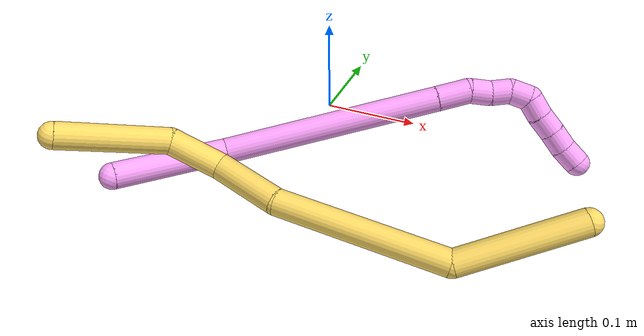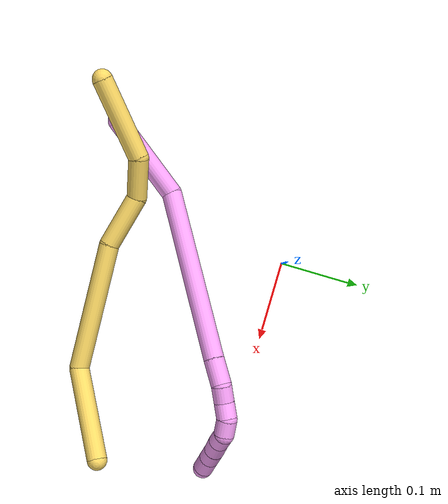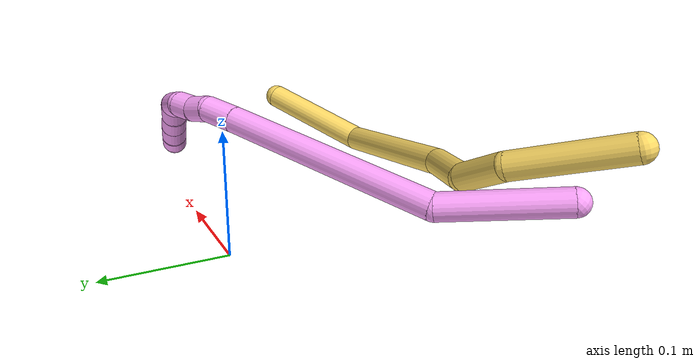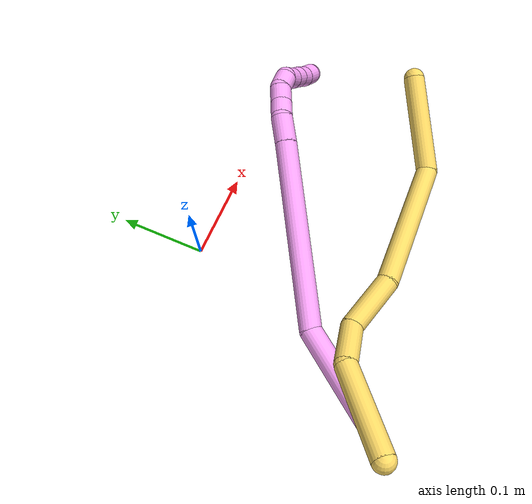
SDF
<sdf version="1.7">
 <world name="default">
  <model name="photoneo_s_sensor">
   <static>1</static>
   <pose>0 0 2 1.57079 1.57079 3.14159</pose>
   <link name="link">
    <inertial><mass>0.1</mass></inertial>
    <sensor name="sensor" type="depth">
     <update_rate>30</update_rate>
     <camera>
      <horizontal_fov>1.22</horizontal_fov>
      <image><width>1920</width><height>1200</height><format>B8G8R8</format></image>
      <clip><near>0.1</near><far>4</far></clip>
      <depth_camera><output>points</output></depth_camera>
     </camera>
     <plugin name="camera_plugin" filename="libgazebo_ros_depth_camera.so">
      <baseline>0.2</baseline>
      <alwaysOn>1</alwaysOn>
      <updateRate>0.0</updateRate>
      <cameraName>camera_ir</cameraName>
      <imageTopicName>/camera/color/image_raw</imageTopicName>
      <cameraInfoTopicName>/camera/color/camera_info</cameraInfoTopicName>
      <depthImageTopicName>/camera/depth/image_raw</depthImageTopicName>
      <depthImageCameraInfoTopicName>/camera/depth/camera_info</depthImageCameraInfoTopicName>
      <pointCloudTopicName>/camera/depth/points</pointCloudTopicName>
      <frameName>fr_optical</frameName>
      <pointCloudCutoff>0.1</pointCloudCutoff>
      <pointCloudCutoffMax>2.0</pointCloudCutoffMax>
      <distortionK1>0</distortionK1>
      <distortionK2>0</distortionK2>
      <distortionK3>0</distortionK3>
      <distortionT1>0</distortionT1>
      <distortionT2>0</distortionT2>
      <CxPrime>0</CxPrime>
      <Cx>0</Cx>
      <Cy>0</Cy>
      <focalLength>0</focalLength>
      <hackBaseline>0</hackBaseline>
     </plugin>
    </sensor>
   </link>
  </model>
  <model name="bin">
   <static>1</static>
   <link name="bottom">
    <collision name="collision-bottom">
     <pose>0 0 -0.01 0 -0 0</pose>
     <geometry><box><size>0.8 0.6 0.02</size></box></geometry>
     <surface>
      <friction><ode><mu>100</mu><mu2>100</mu2></ode></friction>
      <contact><collide_bitmask>65535</collide_bitmask></contact>
     </surface>
    </collision>
   </link>
   <link name="west_wall">
    <collision name="collision-west_wall">
     <pose>-0.41 0 0.1 0 -0 0</pose>
     <geometry><box><size>0.02 0.6 0.2</size></box></geometry>
     <surface>
      <friction><ode><mu>100</mu><mu2>100</mu2></ode></friction>
      <contact><collide_bitmask>65535</collide_bitmask></contact>
     </surface>
    </collision>
   </link>
   <link name="east_wall">
    <collision name="collision-east_wall">
     <pose>0.41 0 0.1 0 -0 0</pose>
     <geometry><box><size>0.02 0.6 0.2</size></box></geometry>
     <surface>
      <friction><ode><mu>100</mu><mu2>100</mu2></ode></friction>
      <contact><collide_bitmask>65535</collide_bitmask></contact>
     </surface>
    </collision>
   </link>
   <link name="south_wall">
    <collision name="collision-south_wall">
     <pose>0 -0.31 0.1 0 -0 0</pose>
     <geometry><box><size>0.8 0.02 0.2</size></box></geometry>
     <surface>
      <friction><ode><mu>100</mu><mu2>100</mu2></ode></friction>
      <contact><collide_bitmask>65535</collide_bitmask></contact>
     </surface>
    </collision>
   </link>
   <link name="north_wall">
    <collision name="collision-north_wall">
     <pose>0 0.31 0.1 0 -0 0</pose>
     <geometry><box><size>0.8 0.02 0.2</size></box></geometry>
     <surface>
      <friction><ode><mu>100</mu><mu2>100</mu2></ode></friction>
      <contact><collide_bitmask>65535</collide_bitmask></contact>
     </surface>
    </collision>
   </link>
  </model>
  <model name="4">
   <static>0</static>
   <link name="4">
    <collision name="collision-cylinder-e_1_1_4">
     <pose>0.04298 -0.017385 -0.030442 2.6227 0.886597 2.12212</pose>
     <geometry><cylinder><radius>0.0125</radius><length>0.110928</length></cylinder></geometry>
     <surface>
      <friction><ode><mu>1.16</mu><mu2>1.16</mu2><slip1>0</slip1><slip2>0</slip2></ode></friction>
      <contact><ode><kp>1e+06</kp><kd>1</kd><max_vel>0</max_vel><min_depth>0.001</min_depth></ode></contact>
     </surface>
    </collision>
    <visual name="visual-cylinder-e_1_1_4">
     <pose>0.04298 -0.017385 -0.030442 2.6227 0.886597 2.12212</pose>
     <geometry><cylinder><radius>0.0125</radius><length>0.110928</length></cylinder></geometry>
     <material><ambient>1 0.65098 0.996078 1</ambient></material>
    </visual>
    <collision name="collision-cylinder-e_2_4_5">
     <pose>0.169246 -0.016445 -0.125257 -2.86427 0.893845 -2.57488</pose>
     <geometry><cylinder><radius>0.0125</radius><length>0.213694</length></cylinder></geometry>
     <surface>
      <friction><ode><mu>1.16</mu><mu2>1.16</mu2><slip1>0</slip1><slip2>0</slip2></ode></friction>
      <contact><ode><kp>1e+06</kp><kd>1</kd><max_vel>0</max_vel><min_depth>0.001</min_depth></ode></contact>
     </surface>
    </collision>
    <visual name="visual-cylinder-e_2_4_5">
     <pose>0.169246 -0.016445 -0.125257 -2.86427 0.893845 -2.57488</pose>
     <geometry><cylinder><radius>0.0125</radius><length>0.213694</length></cylinder></geometry>
     <material><ambient>1 0.65098 0.996078 1</ambient></material>
    </visual>
    <collision name="collision-cylinder-e_3_5_6">
     <pose>0.265209 0.004219 -0.19956 -2.91027 0.893179 -2.66554</pose>
     <geometry><cylinder><radius>0.0125</radius><length>0.032544</length></cylinder></geometry>
     <surface>
      <friction><ode><mu>1.16</mu><mu2>1.16</mu2><slip1>0</slip1><slip2>0</slip2></ode></friction>
      <contact><ode><kp>1e+06</kp><kd>1</kd><max_vel>0</max_vel><min_depth>0.001</min_depth></ode></contact>
     </surface>
    </collision>
    <visual name="visual-cylinder-e_3_5_6">
     <pose>0.265209 0.004219 -0.19956 -2.91027 0.893179 -2.66554</pose>
     <geometry><cylinder><radius>0.0125</radius><length>0.032544</length></cylinder></geometry>
     <material><ambient>1 0.65098 0.996078 1</ambient></material>
    </visual>
    <collision name="collision-cylinder-e_4_6_7">
     <pose>0.28812 0.007092 -0.212701 -2.97661 1.26289 -2.91645</pose>
     <geometry><cylinder><radius>0.0125</radius><length>0.021479</length></cylinder></geometry>
     <surface>
      <friction><ode><mu>1.16</mu><mu2>1.16</mu2><slip1>0</slip1><slip2>0</slip2></ode></friction>
      <contact><ode><kp>1e+06</kp><kd>1</kd><max_vel>0</max_vel><min_depth>0.001</min_depth></ode></contact>
     </surface>
    </collision>
    <visual name="visual-cylinder-e_4_6_7">
     <pose>0.28812 0.007092 -0.212701 -2.97661 1.26289 -2.91645</pose>
     <geometry><cylinder><radius>0.0125</radius><length>0.021479</length></cylinder></geometry>
     <material><ambient>1 0.65098 0.996078 1</ambient></material>
    </visual>
    <collision name="collision-cylinder-e_5_7_8">
     <pose>0.307064 0.009452 -0.220852 -2.78767 1.02686 -2.52735</pose>
     <geometry><cylinder><radius>0.0125</radius><length>0.020356</length></cylinder></geometry>
     <surface>
      <friction><ode><mu>1.16</mu><mu2>1.16</mu2><slip1>0</slip1><slip2>0</slip2></ode></friction>
      <contact><ode><kp>1e+06</kp><kd>1</kd><max_vel>0</max_vel><min_depth>0.001</min_depth></ode></contact>
     </surface>
    </collision>
    <visual name="visual-cylinder-e_5_7_8">
     <pose>0.307064 0.009452 -0.220852 -2.78767 1.02686 -2.52735</pose>
     <geometry><cylinder><radius>0.0125</radius><length>0.020356</length></cylinder></geometry>
     <material><ambient>1 0.65098 0.996078 1</ambient></material>
    </visual>
    <collision name="collision-cylinder-e_6_8_9">
     <pose>0.325476 0.01398 -0.226113 -1.68877 1.29734 -1.41277</pose>
     <geometry><cylinder><radius>0.0125</radius><length>0.020154</length></cylinder></geometry>
     <surface>
      <friction><ode><mu>1.16</mu><mu2>1.16</mu2><slip1>0</slip1><slip2>0</slip2></ode></friction>
      <contact><ode><kp>1e+06</kp><kd>1</kd><max_vel>0</max_vel><min_depth>0.001</min_depth></ode></contact>
     </surface>
    </collision>
    <visual name="visual-cylinder-e_6_8_9">
     <pose>0.325476 0.01398 -0.226113 -1.68877 1.29734 -1.41277</pose>
     <geometry><cylinder><radius>0.0125</radius><length>0.020154</length></cylinder></geometry>
     <material><ambient>1 0.65098 0.996078 1</ambient></material>
    </visual>
    <collision name="collision-cylinder-e_7_9_10">
     <pose>0.343579 0.016339 -0.220874 0.061769 0.985362 0.033167</pose>
     <geometry><cylinder><radius>0.0125</radius><length>0.020159</length></cylinder></geometry>
     <surface>
      <friction><ode><mu>1.16</mu><mu2>1.16</mu2><slip1>0</slip1><slip2>0</slip2></ode></friction>
      <contact><ode><kp>1e+06</kp><kd>1</kd><max_vel>0</max_vel><min_depth>0.001</min_depth></ode></contact>
     </surface>
    </collision>
    <visual name="visual-cylinder-e_7_9_10">
     <pose>0.343579 0.016339 -0.220874 0.061769 0.985362 0.033167</pose>
     <geometry><cylinder><radius>0.0125</radius><length>0.020159</length></cylinder></geometry>
     <material><ambient>1 0.65098 0.996078 1</ambient></material>
    </visual>
    <collision name="collision-cylinder-e_8_10_11">
     <pose>0.361032 0.016106 -0.210633 -0.023719 1.09325 -0.014433</pose>
     <geometry><cylinder><radius>0.0125</radius><length>0.020384</length></cylinder></geometry>
     <surface>
      <friction><ode><mu>1.16</mu><mu2>1.16</mu2><slip1>0</slip1><slip2>0</slip2></ode></friction>
      <contact><ode><kp>1e+06</kp><kd>1</kd><max_vel>0</max_vel><min_depth>0.001</min_depth></ode></contact>
     </surface>
    </collision>
    <visual name="visual-cylinder-e_8_10_11">
     <pose>0.361032 0.016106 -0.210633 -0.023719 1.09325 -0.014433</pose>
     <geometry><cylinder><radius>0.0125</radius><length>0.020384</length></cylinder></geometry>
     <material><ambient>1 0.65098 0.996078 1</ambient></material>
    </visual>
    <collision name="collision-cylinder-e_9_11_12">
     <pose>0.378777 0.016424 -0.200851 -0.040469 1.04001 -0.023174</pose>
     <geometry><cylinder><radius>0.0125</radius><length>0.020159</length></cylinder></geometry>
     <surface>
      <friction><ode><mu>1.16</mu><mu2>1.16</mu2><slip1>0</slip1><slip2>0</slip2></ode></friction>
      <contact><ode><kp>1e+06</kp><kd>1</kd><max_vel>0</max_vel><min_depth>0.001</min_depth></ode></contact>
     </surface>
    </collision>
    <visual name="visual-cylinder-e_9_11_12">
     <pose>0.378777 0.016424 -0.200851 -0.040469 1.04001 -0.023174</pose>
     <geometry><cylinder><radius>0.0125</radius><length>0.020159</length></cylinder></geometry>
     <material><ambient>1 0.65098 0.996078 1</ambient></material>
    </visual>
    <collision name="collision-cylinder-e_10_12_2">
     <pose>0.396436 0.018304 -0.191483 -0.373588 1.09795 -0.230197</pose>
     <geometry><cylinder><radius>0.0125</radius><length>0.020143</length></cylinder></geometry>
     <surface>
      <friction><ode><mu>1.16</mu><mu2>1.16</mu2><slip1>0</slip1><slip2>0</slip2></ode></friction>
      <contact><ode><kp>1e+06</kp><kd>1</kd><max_vel>0</max_vel><min_depth>0.001</min_depth></ode></contact>
     </surface>
    </collision>
    <visual name="visual-cylinder-e_10_12_2">
     <pose>0.396436 0.018304 -0.191483 -0.373588 1.09795 -0.230197</pose>
     <geometry><cylinder><radius>0.0125</radius><length>0.020143</length></cylinder></geometry>
     <material><ambient>1 0.65098 0.996078 1</ambient></material>
    </visual>
    <collision name="collision-sphere-2">
     <pose>0.405402 0.019978 -0.187212 0 -0 0</pose>
     <geometry><sphere><radius>0.0125</radius></sphere></geometry>
     <surface>
      <friction><ode><mu>1.16</mu><mu2>1.16</mu2><slip1>0</slip1><slip2>0</slip2></ode></friction>
      <contact><ode><kp>1e+06</kp><kd>1</kd><max_vel>0</max_vel><min_depth>0.001</min_depth></ode></contact>
     </surface>
    </collision>
    <visual name="visual-sphere-2">
     <pose>0.405402 0.019978 -0.187212 0 -0 0</pose>
     <geometry><sphere><radius>0.0125</radius></sphere></geometry>
     <material><ambient>1 0.65098 0.996078 1</ambient></material>
    </visual>
    <collision name="collision-sphere-12">
     <pose>0.38747 0.01663 -0.195753 0 -0 0</pose>
     <geometry><sphere><radius>0.0125</radius></sphere></geometry>
     <surface>
      <friction><ode><mu>1.16</mu><mu2>1.16</mu2><slip1>0</slip1><slip2>0</slip2></ode></friction>
      <contact><ode><kp>1e+06</kp><kd>1</kd><max_vel>0</max_vel><min_depth>0.001</min_depth></ode></contact>
     </surface>
    </collision>
    <visual name="visual-sphere-12">
     <pose>0.38747 0.01663 -0.195753 0 -0 0</pose>
     <geometry><sphere><radius>0.0125</radius></sphere></geometry>
     <material><ambient>1 0.65098 0.996078 1</ambient></material>
    </visual>
    <collision name="collision-sphere-11">
     <pose>0.370084 0.016217 -0.205949 0 -0 0</pose>
     <geometry><sphere><radius>0.0125</radius></sphere></geometry>
     <surface>
      <friction><ode><mu>1.16</mu><mu2>1.16</mu2><slip1>0</slip1><slip2>0</slip2></ode></friction>
      <contact><ode><kp>1e+06</kp><kd>1</kd><max_vel>0</max_vel><min_depth>0.001</min_depth></ode></contact>
     </surface>
    </collision>
    <visual name="visual-sphere-11">
     <pose>0.370084 0.016217 -0.205949 0 -0 0</pose>
     <geometry><sphere><radius>0.0125</radius></sphere></geometry>
     <material><ambient>1 0.65098 0.996078 1</ambient></material>
    </visual>
    <collision name="collision-sphere-10">
     <pose>0.35198 0.015995 -0.215316 0 -0 0</pose>
     <geometry><sphere><radius>0.0125</radius></sphere></geometry>
     <surface>
      <friction><ode><mu>1.16</mu><mu2>1.16</mu2><slip1>0</slip1><slip2>0</slip2></ode></friction>
      <contact><ode><kp>1e+06</kp><kd>1</kd><max_vel>0</max_vel><min_depth>0.001</min_depth></ode></contact>
     </surface>
    </collision>
    <visual name="visual-sphere-10">
     <pose>0.35198 0.015995 -0.215316 0 -0 0</pose>
     <geometry><sphere><radius>0.0125</radius></sphere></geometry>
     <material><ambient>1 0.65098 0.996078 1</ambient></material>
    </visual>
    <collision name="collision-sphere-9">
     <pose>0.335178 0.016683 -0.226433 0 -0 0</pose>
     <geometry><sphere><radius>0.0125</radius></sphere></geometry>
     <surface>
      <friction><ode><mu>1.16</mu><mu2>1.16</mu2><slip1>0</slip1><slip2>0</slip2></ode></friction>
      <contact><ode><kp>1e+06</kp><kd>1</kd><max_vel>0</max_vel><min_depth>0.001</min_depth></ode></contact>
     </surface>
    </collision>
    <visual name="visual-sphere-9">
     <pose>0.335178 0.016683 -0.226433 0 -0 0</pose>
     <geometry><sphere><radius>0.0125</radius></sphere></geometry>
     <material><ambient>1 0.65098 0.996078 1</ambient></material>
    </visual>
    <collision name="collision-sphere-4">
     <pose>0.085961 -0.03477 -0.060883 0 -0 0</pose>
     <geometry><sphere><radius>0.0125</radius></sphere></geometry>
     <surface>
      <friction><ode><mu>1.16</mu><mu2>1.16</mu2><slip1>0</slip1><slip2>0</slip2></ode></friction>
      <contact><ode><kp>1e+06</kp><kd>1</kd><max_vel>0</max_vel><min_depth>0.001</min_depth></ode></contact>
     </surface>
    </collision>
    <visual name="visual-sphere-4">
     <pose>0.085961 -0.03477 -0.060883 0 -0 0</pose>
     <geometry><sphere><radius>0.0125</radius></sphere></geometry>
     <material><ambient>1 0.65098 0.996078 1</ambient></material>
    </visual>
    <collision name="collision-sphere-1">
     <geometry><sphere><radius>0.0125</radius></sphere></geometry>
     <surface>
      <friction><ode><mu>1.16</mu><mu2>1.16</mu2><slip1>0</slip1><slip2>0</slip2></ode></friction>
      <contact><ode><kp>1e+06</kp><kd>1</kd><max_vel>0</max_vel><min_depth>0.001</min_depth></ode></contact>
     </surface>
    </collision>
    <visual name="visual-sphere-1">
     <geometry><sphere><radius>0.0125</radius></sphere></geometry>
     <material><ambient>1 0.65098 0.996078 1</ambient></material>
    </visual>
    <collision name="collision-sphere-8">
     <pose>0.315773 0.011278 -0.225793 0 -0 0</pose>
     <geometry><sphere><radius>0.0125</radius></sphere></geometry>
     <surface>
      <friction><ode><mu>1.16</mu><mu2>1.16</mu2><slip1>0</slip1><slip2>0</slip2></ode></friction>
      <contact><ode><kp>1e+06</kp><kd>1</kd><max_vel>0</max_vel><min_depth>0.001</min_depth></ode></contact>
     </surface>
    </collision>
    <visual name="visual-sphere-8">
     <pose>0.315773 0.011278 -0.225793 0 -0 0</pose>
     <geometry><sphere><radius>0.0125</radius></sphere></geometry>
     <material><ambient>1 0.65098 0.996078 1</ambient></material>
    </visual>
    <collision name="collision-sphere-5">
     <pose>0.252532 0.00188 -0.18963 0 -0 0</pose>
     <geometry><sphere><radius>0.0125</radius></sphere></geometry>
     <surface>
      <friction><ode><mu>1.16</mu><mu2>1.16</mu2><slip1>0</slip1><slip2>0</slip2></ode></friction>
      <contact><ode><kp>1e+06</kp><kd>1</kd><max_vel>0</max_vel><min_depth>0.001</min_depth></ode></contact>
     </surface>
    </collision>
    <visual name="visual-sphere-5">
     <pose>0.252532 0.00188 -0.18963 0 -0 0</pose>
     <geometry><sphere><radius>0.0125</radius></sphere></geometry>
     <material><ambient>1 0.65098 0.996078 1</ambient></material>
    </visual>
    <collision name="collision-sphere-6">
     <pose>0.277886 0.006558 -0.20949 0 -0 0</pose>
     <geometry><sphere><radius>0.0125</radius></sphere></geometry>
     <surface>
      <friction><ode><mu>1.16</mu><mu2>1.16</mu2><slip1>0</slip1><slip2>0</slip2></ode></friction>
      <contact><ode><kp>1e+06</kp><kd>1</kd><max_vel>0</max_vel><min_depth>0.001</min_depth></ode></contact>
     </surface>
    </collision>
    <visual name="visual-sphere-6">
     <pose>0.277886 0.006558 -0.20949 0 -0 0</pose>
     <geometry><sphere><radius>0.0125</radius></sphere></geometry>
     <material><ambient>1 0.65098 0.996078 1</ambient></material>
    </visual>
    <collision name="collision-sphere-7">
     <pose>0.298355 0.007627 -0.215911 0 -0 0</pose>
     <geometry><sphere><radius>0.0125</radius></sphere></geometry>
     <surface>
      <friction><ode><mu>1.16</mu><mu2>1.16</mu2><slip1>0</slip1><slip2>0</slip2></ode></friction>
      <contact><ode><kp>1e+06</kp><kd>1</kd><max_vel>0</max_vel><min_depth>0.001</min_depth></ode></contact>
     </surface>
    </collision>
    <visual name="visual-sphere-7">
     <pose>0.298355 0.007627 -0.215911 0 -0 0</pose>
     <geometry><sphere><radius>0.0125</radius></sphere></geometry>
     <material><ambient>1 0.65098 0.996078 1</ambient></material>
    </visual>
    <inertial>
     <pose>0.196942 -0.006643 -0.133823 0 -0 0</pose>
     <mass>0.5</mass>
     <inertia>
      <ixx>-0.000657</ixx>
      <ixy>0</ixy>
      <ixz>0</ixz>
      <iyy>0.000654</iyy>
      <iyz>0</iyz>
      <izz>-0.000865</izz>
     </inertia>
    </inertial>
   </link>
   <pose>-0.110897 -0.245671 0.039526 2.48799 0.439615 0.298981</pose>
  </model>
  <model name="5">
   <static>0</static>
   <link name="5">
    <collision name="collision-cylinder-e_1_1_4">
     <pose>-0.047779 -0.007821 -0.033633 2.91311 -0.944981 -2.69991</pose>
     <geometry><cylinder><radius>0.0125</radius><length>0.117902</length></cylinder></geometry>
     <surface>
      <friction><ode><mu>1.16</mu><mu2>1.16</mu2><slip1>0</slip1><slip2>0</slip2></ode></friction>
      <contact><ode><kp>1e+06</kp><kd>1</kd><max_vel>0</max_vel><min_depth>0.001</min_depth></ode></contact>
     </surface>
    </collision>
    <visual name="visual-cylinder-e_1_1_4">
     <pose>-0.047779 -0.007821 -0.033633 2.91311 -0.944981 -2.69991</pose>
     <geometry><cylinder><radius>0.0125</radius><length>0.117902</length></cylinder></geometry>
     <material><ambient>1 0.858824 0.4 1</ambient></material>
    </visual>
    <collision name="collision-cylinder-e_2_4_5">
     <pose>-0.170214 0.011626 -0.081493 -2.05166 -1.18 1.67004</pose>
     <geometry><cylinder><radius>0.0125</radius><length>0.161488</length></cylinder></geometry>
     <surface>
      <friction><ode><mu>1.16</mu><mu2>1.16</mu2><slip1>0</slip1><slip2>0</slip2></ode></friction>
      <contact><ode><kp>1e+06</kp><kd>1</kd><max_vel>0</max_vel><min_depth>0.001</min_depth></ode></contact>
     </surface>
    </collision>
    <visual name="visual-cylinder-e_2_4_5">
     <pose>-0.170214 0.011626 -0.081493 -2.05166 -1.18 1.67004</pose>
     <geometry><cylinder><radius>0.0125</radius><length>0.161488</length></cylinder></geometry>
     <material><ambient>1 0.858824 0.4 1</ambient></material>
    </visual>
    <collision name="collision-cylinder-e_3_5_6">
     <pose>-0.271801 0.058962 -0.100152 -1.78815 -0.918965 1.1042</pose>
     <geometry><cylinder><radius>0.0125</radius><length>0.067751</length></cylinder></geometry>
     <surface>
      <friction><ode><mu>1.16</mu><mu2>1.16</mu2><slip1>0</slip1><slip2>0</slip2></ode></friction>
      <contact><ode><kp>1e+06</kp><kd>1</kd><max_vel>0</max_vel><min_depth>0.001</min_depth></ode></contact>
     </surface>
    </collision>
    <visual name="visual-cylinder-e_3_5_6">
     <pose>-0.271801 0.058962 -0.100152 -1.78815 -0.918965 1.1042</pose>
     <geometry><cylinder><radius>0.0125</radius><length>0.067751</length></cylinder></geometry>
     <material><ambient>1 0.858824 0.4 1</ambient></material>
    </visual>
    <collision name="collision-cylinder-e_4_6_7">
     <pose>-0.323864 0.083131 -0.101078 -0.863797 -1.35933 0.713105</pose>
     <geometry><cylinder><radius>0.0125</radius><length>0.051411</length></cylinder></geometry>
     <surface>
      <friction><ode><mu>1.16</mu><mu2>1.16</mu2><slip1>0</slip1><slip2>0</slip2></ode></friction>
      <contact><ode><kp>1e+06</kp><kd>1</kd><max_vel>0</max_vel><min_depth>0.001</min_depth></ode></contact>
     </surface>
    </collision>
    <visual name="visual-cylinder-e_4_6_7">
     <pose>-0.323864 0.083131 -0.101078 -0.863797 -1.35933 0.713105</pose>
     <geometry><cylinder><radius>0.0125</radius><length>0.051411</length></cylinder></geometry>
     <material><ambient>1 0.858824 0.4 1</ambient></material>
    </visual>
    <collision name="collision-cylinder-e_5_7_2">
     <pose>-0.397062 0.071151 -0.09959 1.69552 -1.24554 -1.36614</pose>
     <geometry><cylinder><radius>0.0125</radius><length>0.101448</length></cylinder></geometry>
     <surface>
      <friction><ode><mu>1.16</mu><mu2>1.16</mu2><slip1>0</slip1><slip2>0</slip2></ode></friction>
      <contact><ode><kp>1e+06</kp><kd>1</kd><max_vel>0</max_vel><min_depth>0.001</min_depth></ode></contact>
     </surface>
    </collision>
    <visual name="visual-cylinder-e_5_7_2">
     <pose>-0.397062 0.071151 -0.09959 1.69552 -1.24554 -1.36614</pose>
     <geometry><cylinder><radius>0.0125</radius><length>0.101448</length></cylinder></geometry>
     <material><ambient>1 0.858824 0.4 1</ambient></material>
    </visual>
    <collision name="collision-sphere-2">
     <pose>-0.445126 0.055067 -0.101607 0 -0 0</pose>
     <geometry><sphere><radius>0.0125</radius></sphere></geometry>
     <surface>
      <friction><ode><mu>1.16</mu><mu2>1.16</mu2><slip1>0</slip1><slip2>0</slip2></ode></friction>
      <contact><ode><kp>1e+06</kp><kd>1</kd><max_vel>0</max_vel><min_depth>0.001</min_depth></ode></contact>
     </surface>
    </collision>
    <visual name="visual-sphere-2">
     <pose>-0.445126 0.055067 -0.101607 0 -0 0</pose>
     <geometry><sphere><radius>0.0125</radius></sphere></geometry>
     <material><ambient>1 0.858824 0.4 1</ambient></material>
    </visual>
    <collision name="collision-sphere-7">
     <pose>-0.348997 0.087234 -0.097574 0 -0 0</pose>
     <geometry><sphere><radius>0.0125</radius></sphere></geometry>
     <surface>
      <friction><ode><mu>1.16</mu><mu2>1.16</mu2><slip1>0</slip1><slip2>0</slip2></ode></friction>
      <contact><ode><kp>1e+06</kp><kd>1</kd><max_vel>0</max_vel><min_depth>0.001</min_depth></ode></contact>
     </surface>
    </collision>
    <visual name="visual-sphere-7">
     <pose>-0.348997 0.087234 -0.097574 0 -0 0</pose>
     <geometry><sphere><radius>0.0125</radius></sphere></geometry>
     <material><ambient>1 0.858824 0.4 1</ambient></material>
    </visual>
    <collision name="collision-sphere-6">
     <pose>-0.298731 0.079029 -0.104583 0 -0 0</pose>
     <geometry><sphere><radius>0.0125</radius></sphere></geometry>
     <surface>
      <friction><ode><mu>1.16</mu><mu2>1.16</mu2><slip1>0</slip1><slip2>0</slip2></ode></friction>
      <contact><ode><kp>1e+06</kp><kd>1</kd><max_vel>0</max_vel><min_depth>0.001</min_depth></ode></contact>
     </surface>
    </collision>
    <visual name="visual-sphere-6">
     <pose>-0.298731 0.079029 -0.104583 0 -0 0</pose>
     <geometry><sphere><radius>0.0125</radius></sphere></geometry>
     <material><ambient>1 0.858824 0.4 1</ambient></material>
    </visual>
    <collision name="collision-sphere-5">
     <pose>-0.244871 0.038895 -0.09572 0 -0 0</pose>
     <geometry><sphere><radius>0.0125</radius></sphere></geometry>
     <surface>
      <friction><ode><mu>1.16</mu><mu2>1.16</mu2><slip1>0</slip1><slip2>0</slip2></ode></friction>
      <contact><ode><kp>1e+06</kp><kd>1</kd><max_vel>0</max_vel><min_depth>0.001</min_depth></ode></contact>
     </surface>
    </collision>
    <visual name="visual-sphere-5">
     <pose>-0.244871 0.038895 -0.09572 0 -0 0</pose>
     <geometry><sphere><radius>0.0125</radius></sphere></geometry>
     <material><ambient>1 0.858824 0.4 1</ambient></material>
    </visual>
    <collision name="collision-sphere-1">
     <geometry><sphere><radius>0.0125</radius></sphere></geometry>
     <surface>
      <friction><ode><mu>1.16</mu><mu2>1.16</mu2><slip1>0</slip1><slip2>0</slip2></ode></friction>
      <contact><ode><kp>1e+06</kp><kd>1</kd><max_vel>0</max_vel><min_depth>0.001</min_depth></ode></contact>
     </surface>
    </collision>
    <visual name="visual-sphere-1">
     <geometry><sphere><radius>0.0125</radius></sphere></geometry>
     <material><ambient>1 0.858824 0.4 1</ambient></material>
    </visual>
    <collision name="collision-sphere-4">
     <pose>-0.095558 -0.015643 -0.067267 0 -0 0</pose>
     <geometry><sphere><radius>0.0125</radius></sphere></geometry>
     <surface>
      <friction><ode><mu>1.16</mu><mu2>1.16</mu2><slip1>0</slip1><slip2>0</slip2></ode></friction>
      <contact><ode><kp>1e+06</kp><kd>1</kd><max_vel>0</max_vel><min_depth>0.001</min_depth></ode></contact>
     </surface>
    </collision>
    <visual name="visual-sphere-4">
     <pose>-0.095558 -0.015643 -0.067267 0 -0 0</pose>
     <geometry><sphere><radius>0.0125</radius></sphere></geometry>
     <material><ambient>1 0.858824 0.4 1</ambient></material>
    </visual>
    <inertial>
     <pose>-0.216934 0.032884 -0.078422 0 -0 0</pose>
     <mass>0.5</mass>
     <inertia>
      <ixx>-1.8e-05</ixx>
      <ixy>0</ixy>
      <ixz>0</ixz>
      <iyy>0.000648</iyy>
      <iyz>0</iyz>
      <izz>0.000467</izz>
     </inertia>
    </inertial>
   </link>
   <pose>0.296944 -0.152884 0.045452 -0.00919 0.323768 0.376338</pose>
  </model>
 </world>
</sdf>
